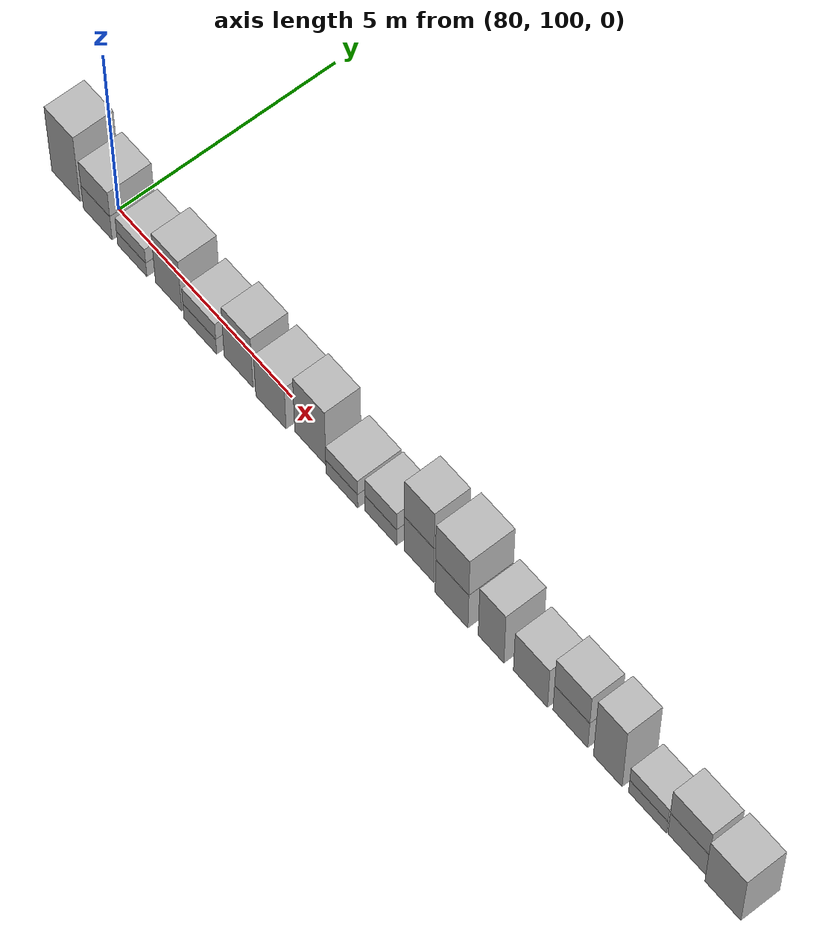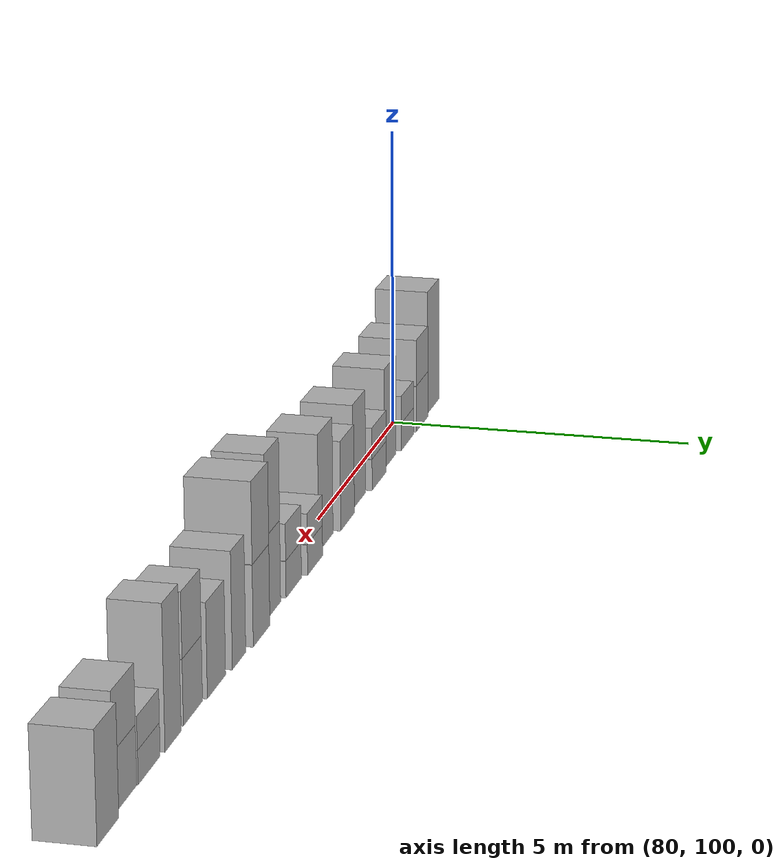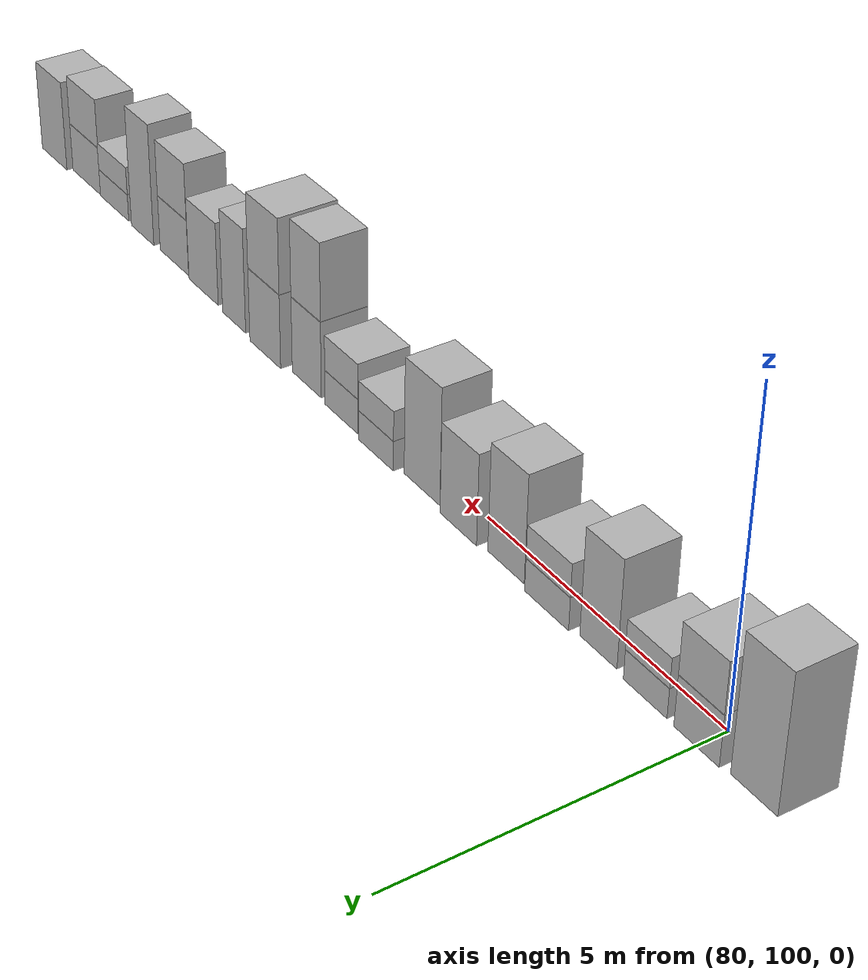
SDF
<sdf version="1.5">
 <world name="default">
  <model name="ground_plane">
   <static>true</static>
   <link name="link">
    <collision name="collision">
     <geometry><plane><normal>0 0 1</normal><size>250 250</size></plane></geometry>
     <surface><friction><ode><mu>1</mu><mu2>1</mu2></ode></friction></surface>
    </collision>
    <visual name="grass">
     <cast_shadows>false</cast_shadows>
     <geometry><mesh><uri>file://grass_plane/meshes/grass_plane.dae</uri></mesh></geometry>
    </visual>
   </link>
  </model>
  <model name="Cardboard_box_179">
   <link name="link_0">
    <pose>79 100 0 0 0 0</pose>
    <inertial>
     <mass>1</mass>
     <inertia>
      <ixx>0.166667</ixx>
      <ixy>0</ixy>
      <ixz>0</ixz>
      <iyy>0.166667</iyy>
      <iyz>0</iyz>
      <izz>0.166667</izz>
     </inertia>
    </inertial>
    <collision name="collision">
     <geometry>
      <mesh>
       <uri>model://Cardboard_box/meshes/cardboard_box.dae</uri>
       <scale>2.122306021 2.26505654423 5.37925650093</scale>
      </mesh>
     </geometry>
    </collision>
    <visual name="visual">
     <geometry>
      <mesh>
       <uri>model://Cardboard_box/meshes/cardboard_box.dae</uri>
       <scale>2.122306021 2.26505654423 5.37925650093</scale>
      </mesh>
     </geometry>
    </visual>
   </link>
   <static>1</static>
  </model>
  <model name="Cardboard_box_180">
   <link name="link_0">
    <pose>80 100 0 0 0 0</pose>
    <inertial>
     <mass>1</mass>
     <inertia>
      <ixx>0.166667</ixx>
      <ixy>0</ixy>
      <ixz>0</ixz>
      <iyy>0.166667</iyy>
      <iyz>0</iyz>
      <izz>0.166667</izz>
     </inertia>
    </inertial>
    <collision name="collision">
     <geometry>
      <mesh>
       <uri>model://Cardboard_box/meshes/cardboard_box.dae</uri>
       <scale>2.13948751265 2.47710750509 1.99974900965</scale>
      </mesh>
     </geometry>
    </collision>
    <visual name="visual">
     <geometry>
      <mesh>
       <uri>model://Cardboard_box/meshes/cardboard_box.dae</uri>
       <scale>2.13948751265 2.47710750509 1.99974900965</scale>
      </mesh>
     </geometry>
    </visual>
   </link>
   <static>1</static>
  </model>
  <model name="Cardboard_box_top_180">
   <link name="link_0">
    <pose>80 100 0.799899603859 0 0 0</pose>
    <inertial>
     <mass>1</mass>
     <inertia>
      <ixx>0.166667</ixx>
      <ixy>0</ixy>
      <ixz>0</ixz>
      <iyy>0.166667</iyy>
      <iyz>0</iyz>
      <izz>0.166667</izz>
     </inertia>
    </inertial>
    <collision name="collision">
     <geometry>
      <mesh>
       <uri>model://Cardboard_box/meshes/cardboard_box.dae</uri>
       <scale>2.13948751265 2.47710750509 1.99974900965</scale>
      </mesh>
     </geometry>
    </collision>
    <visual name="visual">
     <geometry>
      <mesh>
       <uri>model://Cardboard_box/meshes/cardboard_box.dae</uri>
       <scale>2.13948751265 2.47710750509 1.99974900965</scale>
      </mesh>
     </geometry>
    </visual>
   </link>
   <static>1</static>
  </model>
  <model name="Cardboard_box_181">
   <link name="link_0">
    <pose>81 100 0 0 0 0</pose>
    <inertial>
     <mass>1</mass>
     <inertia>
      <ixx>0.166667</ixx>
      <ixy>0</ixy>
      <ixz>0</ixz>
      <iyy>0.166667</iyy>
      <iyz>0</iyz>
      <izz>0.166667</izz>
     </inertia>
    </inertial>
    <collision name="collision">
     <geometry>
      <mesh>
       <uri>model://Cardboard_box/meshes/cardboard_box.dae</uri>
       <scale>2.15741598389 2.40993669173 1.17210435555</scale>
      </mesh>
     </geometry>
    </collision>
    <visual name="visual">
     <geometry>
      <mesh>
       <uri>model://Cardboard_box/meshes/cardboard_box.dae</uri>
       <scale>2.15741598389 2.40993669173 1.17210435555</scale>
      </mesh>
     </geometry>
    </visual>
   </link>
   <static>1</static>
  </model>
  <model name="Cardboard_box_top_181">
   <link name="link_0">
    <pose>81 100 0.468841742218 0 0 0</pose>
    <inertial>
     <mass>1</mass>
     <inertia>
      <ixx>0.166667</ixx>
      <ixy>0</ixy>
      <ixz>0</ixz>
      <iyy>0.166667</iyy>
      <iyz>0</iyz>
      <izz>0.166667</izz>
     </inertia>
    </inertial>
    <collision name="collision">
     <geometry>
      <mesh>
       <uri>model://Cardboard_box/meshes/cardboard_box.dae</uri>
       <scale>2.15741598389 2.40993669173 1.17210435555</scale>
      </mesh>
     </geometry>
    </collision>
    <visual name="visual">
     <geometry>
      <mesh>
       <uri>model://Cardboard_box/meshes/cardboard_box.dae</uri>
       <scale>2.15741598389 2.40993669173 1.17210435555</scale>
      </mesh>
     </geometry>
    </visual>
   </link>
   <static>1</static>
  </model>
  <model name="Cardboard_box_182">
   <link name="link_0">
    <pose>82 100 0 0 0 0</pose>
    <inertial>
     <mass>1</mass>
     <inertia>
      <ixx>0.166667</ixx>
      <ixy>0</ixy>
      <ixz>0</ixz>
      <iyy>0.166667</iyy>
      <iyz>0</iyz>
      <izz>0.166667</izz>
     </inertia>
    </inertial>
    <collision name="collision">
     <geometry>
      <mesh>
       <uri>model://Cardboard_box/meshes/cardboard_box.dae</uri>
       <scale>1.92047214817 2.17096909257 4.24003227269</scale>
      </mesh>
     </geometry>
    </collision>
    <visual name="visual">
     <geometry>
      <mesh>
       <uri>model://Cardboard_box/meshes/cardboard_box.dae</uri>
       <scale>1.92047214817 2.17096909257 4.24003227269</scale>
      </mesh>
     </geometry>
    </visual>
   </link>
   <static>1</static>
  </model>
  <model name="Cardboard_box_183">
   <link name="link_0">
    <pose>83 100 0 0 0 0</pose>
    <inertial>
     <mass>1</mass>
     <inertia>
      <ixx>0.166667</ixx>
      <ixy>0</ixy>
      <ixz>0</ixz>
      <iyy>0.166667</iyy>
      <iyz>0</iyz>
      <izz>0.166667</izz>
     </inertia>
    </inertial>
    <collision name="collision">
     <geometry>
      <mesh>
       <uri>model://Cardboard_box/meshes/cardboard_box.dae</uri>
       <scale>2.3789508709 2.49527070488 1.31243319637</scale>
      </mesh>
     </geometry>
    </collision>
    <visual name="visual">
     <geometry>
      <mesh>
       <uri>model://Cardboard_box/meshes/cardboard_box.dae</uri>
       <scale>2.3789508709 2.49527070488 1.31243319637</scale>
      </mesh>
     </geometry>
    </visual>
   </link>
   <static>1</static>
  </model>
  <model name="Cardboard_box_top_183">
   <link name="link_0">
    <pose>83 100 0.524973278549 0 0 0</pose>
    <inertial>
     <mass>1</mass>
     <inertia>
      <ixx>0.166667</ixx>
      <ixy>0</ixy>
      <ixz>0</ixz>
      <iyy>0.166667</iyy>
      <iyz>0</iyz>
      <izz>0.166667</izz>
     </inertia>
    </inertial>
    <collision name="collision">
     <geometry>
      <mesh>
       <uri>model://Cardboard_box/meshes/cardboard_box.dae</uri>
       <scale>2.3789508709 2.49527070488 1.31243319637</scale>
      </mesh>
     </geometry>
    </collision>
    <visual name="visual">
     <geometry>
      <mesh>
       <uri>model://Cardboard_box/meshes/cardboard_box.dae</uri>
       <scale>2.3789508709 2.49527070488 1.31243319637</scale>
      </mesh>
     </geometry>
    </visual>
   </link>
   <static>1</static>
  </model>
  <model name="Cardboard_box_184">
   <link name="link_0">
    <pose>84 100 0 0 0 0</pose>
    <inertial>
     <mass>1</mass>
     <inertia>
      <ixx>0.166667</ixx>
      <ixy>0</ixy>
      <ixz>0</ixz>
      <iyy>0.166667</iyy>
      <iyz>0</iyz>
      <izz>0.166667</izz>
     </inertia>
    </inertial>
    <collision name="collision">
     <geometry>
      <mesh>
       <uri>model://Cardboard_box/meshes/cardboard_box.dae</uri>
       <scale>2.0613268723 2.10571959502 4.31785598906</scale>
      </mesh>
     </geometry>
    </collision>
    <visual name="visual">
     <geometry>
      <mesh>
       <uri>model://Cardboard_box/meshes/cardboard_box.dae</uri>
       <scale>2.0613268723 2.10571959502 4.31785598906</scale>
      </mesh>
     </geometry>
    </visual>
   </link>
   <static>1</static>
  </model>
  <model name="Cardboard_box_185">
   <link name="link_0">
    <pose>85 100 0 0 0 0</pose>
    <inertial>
     <mass>1</mass>
     <inertia>
      <ixx>0.166667</ixx>
      <ixy>0</ixy>
      <ixz>0</ixz>
      <iyy>0.166667</iyy>
      <iyz>0</iyz>
      <izz>0.166667</izz>
     </inertia>
    </inertial>
    <collision name="collision">
     <geometry>
      <mesh>
       <uri>model://Cardboard_box/meshes/cardboard_box.dae</uri>
       <scale>2.15543850499 2.43160649641 3.66866801806</scale>
      </mesh>
     </geometry>
    </collision>
    <visual name="visual">
     <geometry>
      <mesh>
       <uri>model://Cardboard_box/meshes/cardboard_box.dae</uri>
       <scale>2.15543850499 2.43160649641 3.66866801806</scale>
      </mesh>
     </geometry>
    </visual>
   </link>
   <static>1</static>
  </model>
  <model name="Cardboard_box_186">
   <link name="link_0">
    <pose>86 100 0 0 0 0</pose>
    <inertial>
     <mass>1</mass>
     <inertia>
      <ixx>0.166667</ixx>
      <ixy>0</ixy>
      <ixz>0</ixz>
      <iyy>0.166667</iyy>
      <iyz>0</iyz>
      <izz>0.166667</izz>
     </inertia>
    </inertial>
    <collision name="collision">
     <geometry>
      <mesh>
       <uri>model://Cardboard_box/meshes/cardboard_box.dae</uri>
       <scale>2.19474587979 1.99302947957 4.74889730759</scale>
      </mesh>
     </geometry>
    </collision>
    <visual name="visual">
     <geometry>
      <mesh>
       <uri>model://Cardboard_box/meshes/cardboard_box.dae</uri>
       <scale>2.19474587979 1.99302947957 4.74889730759</scale>
      </mesh>
     </geometry>
    </visual>
   </link>
   <static>1</static>
  </model>
  <model name="Cardboard_box_187">
   <link name="link_0">
    <pose>87 100 0 0 0 0</pose>
    <inertial>
     <mass>1</mass>
     <inertia>
      <ixx>0.166667</ixx>
      <ixy>0</ixy>
      <ixz>0</ixz>
      <iyy>0.166667</iyy>
      <iyz>0</iyz>
      <izz>0.166667</izz>
     </inertia>
    </inertial>
    <collision name="collision">
     <geometry>
      <mesh>
       <uri>model://Cardboard_box/meshes/cardboard_box.dae</uri>
       <scale>2.22340834325 2.47675398053 1.22494720834</scale>
      </mesh>
     </geometry>
    </collision>
    <visual name="visual">
     <geometry>
      <mesh>
       <uri>model://Cardboard_box/meshes/cardboard_box.dae</uri>
       <scale>2.22340834325 2.47675398053 1.22494720834</scale>
      </mesh>
     </geometry>
    </visual>
   </link>
   <static>1</static>
  </model>
  <model name="Cardboard_box_top_187">
   <link name="link_0">
    <pose>87 100 0.489978883335 0 0 0</pose>
    <inertial>
     <mass>1</mass>
     <inertia>
      <ixx>0.166667</ixx>
      <ixy>0</ixy>
      <ixz>0</ixz>
      <iyy>0.166667</iyy>
      <iyz>0</iyz>
      <izz>0.166667</izz>
     </inertia>
    </inertial>
    <collision name="collision">
     <geometry>
      <mesh>
       <uri>model://Cardboard_box/meshes/cardboard_box.dae</uri>
       <scale>2.22340834325 2.47675398053 1.22494720834</scale>
      </mesh>
     </geometry>
    </collision>
    <visual name="visual">
     <geometry>
      <mesh>
       <uri>model://Cardboard_box/meshes/cardboard_box.dae</uri>
       <scale>2.22340834325 2.47675398053 1.22494720834</scale>
      </mesh>
     </geometry>
    </visual>
   </link>
   <static>1</static>
  </model>
  <model name="Cardboard_box_188">
   <link name="link_0">
    <pose>88 100 0 0 0 0</pose>
    <inertial>
     <mass>1</mass>
     <inertia>
      <ixx>0.166667</ixx>
      <ixy>0</ixy>
      <ixz>0</ixz>
      <iyy>0.166667</iyy>
      <iyz>0</iyz>
      <izz>0.166667</izz>
     </inertia>
    </inertial>
    <collision name="collision">
     <geometry>
      <mesh>
       <uri>model://Cardboard_box/meshes/cardboard_box.dae</uri>
       <scale>2.19333294126 2.15988090615 1.45007693015</scale>
      </mesh>
     </geometry>
    </collision>
    <visual name="visual">
     <geometry>
      <mesh>
       <uri>model://Cardboard_box/meshes/cardboard_box.dae</uri>
       <scale>2.19333294126 2.15988090615 1.45007693015</scale>
      </mesh>
     </geometry>
    </visual>
   </link>
   <static>1</static>
  </model>
  <model name="Cardboard_box_top_188">
   <link name="link_0">
    <pose>88 100 0.58003077206 0 0 0</pose>
    <inertial>
     <mass>1</mass>
     <inertia>
      <ixx>0.166667</ixx>
      <ixy>0</ixy>
      <ixz>0</ixz>
      <iyy>0.166667</iyy>
      <iyz>0</iyz>
      <izz>0.166667</izz>
     </inertia>
    </inertial>
    <collision name="collision">
     <geometry>
      <mesh>
       <uri>model://Cardboard_box/meshes/cardboard_box.dae</uri>
       <scale>2.19333294126 2.15988090615 1.45007693015</scale>
      </mesh>
     </geometry>
    </collision>
    <visual name="visual">
     <geometry>
      <mesh>
       <uri>model://Cardboard_box/meshes/cardboard_box.dae</uri>
       <scale>2.19333294126 2.15988090615 1.45007693015</scale>
      </mesh>
     </geometry>
    </visual>
   </link>
   <static>1</static>
  </model>
  <model name="Cardboard_box_189">
   <link name="link_0">
    <pose>89 100 0 0 0 0</pose>
    <inertial>
     <mass>1</mass>
     <inertia>
      <ixx>0.166667</ixx>
      <ixy>0</ixy>
      <ixz>0</ixz>
      <iyy>0.166667</iyy>
      <iyz>0</iyz>
      <izz>0.166667</izz>
     </inertia>
    </inertial>
    <collision name="collision">
     <geometry>
      <mesh>
       <uri>model://Cardboard_box/meshes/cardboard_box.dae</uri>
       <scale>2.01243470722 1.96870483521 3.18833075897</scale>
      </mesh>
     </geometry>
    </collision>
    <visual name="visual">
     <geometry>
      <mesh>
       <uri>model://Cardboard_box/meshes/cardboard_box.dae</uri>
       <scale>2.01243470722 1.96870483521 3.18833075897</scale>
      </mesh>
     </geometry>
    </visual>
   </link>
   <static>1</static>
  </model>
  <model name="Cardboard_box_top_189">
   <link name="link_0">
    <pose>89 100 1.27533230359 0 0 0</pose>
    <inertial>
     <mass>1</mass>
     <inertia>
      <ixx>0.166667</ixx>
      <ixy>0</ixy>
      <ixz>0</ixz>
      <iyy>0.166667</iyy>
      <iyz>0</iyz>
      <izz>0.166667</izz>
     </inertia>
    </inertial>
    <collision name="collision">
     <geometry>
      <mesh>
       <uri>model://Cardboard_box/meshes/cardboard_box.dae</uri>
       <scale>2.01243470722 1.96870483521 3.18833075897</scale>
      </mesh>
     </geometry>
    </collision>
    <visual name="visual">
     <geometry>
      <mesh>
       <uri>model://Cardboard_box/meshes/cardboard_box.dae</uri>
       <scale>2.01243470722 1.96870483521 3.18833075897</scale>
      </mesh>
     </geometry>
    </visual>
   </link>
   <static>1</static>
  </model>
  <model name="Cardboard_box_190">
   <link name="link_0">
    <pose>90 100 0 0 0 0</pose>
    <inertial>
     <mass>1</mass>
     <inertia>
      <ixx>0.166667</ixx>
      <ixy>0</ixy>
      <ixz>0</ixz>
      <iyy>0.166667</iyy>
      <iyz>0</iyz>
      <izz>0.166667</izz>
     </inertia>
    </inertial>
    <collision name="collision">
     <geometry>
      <mesh>
       <uri>model://Cardboard_box/meshes/cardboard_box.dae</uri>
       <scale>2.22950049554 2.47895454864 3.12920038767</scale>
      </mesh>
     </geometry>
    </collision>
    <visual name="visual">
     <geometry>
      <mesh>
       <uri>model://Cardboard_box/meshes/cardboard_box.dae</uri>
       <scale>2.22950049554 2.47895454864 3.12920038767</scale>
      </mesh>
     </geometry>
    </visual>
   </link>
   <static>1</static>
  </model>
  <model name="Cardboard_box_top_190">
   <link name="link_0">
    <pose>90 100 1.25168015507 0 0 0</pose>
    <inertial>
     <mass>1</mass>
     <inertia>
      <ixx>0.166667</ixx>
      <ixy>0</ixy>
      <ixz>0</ixz>
      <iyy>0.166667</iyy>
      <iyz>0</iyz>
      <izz>0.166667</izz>
     </inertia>
    </inertial>
    <collision name="collision">
     <geometry>
      <mesh>
       <uri>model://Cardboard_box/meshes/cardboard_box.dae</uri>
       <scale>2.22950049554 2.47895454864 3.12920038767</scale>
      </mesh>
     </geometry>
    </collision>
    <visual name="visual">
     <geometry>
      <mesh>
       <uri>model://Cardboard_box/meshes/cardboard_box.dae</uri>
       <scale>2.22950049554 2.47895454864 3.12920038767</scale>
      </mesh>
     </geometry>
    </visual>
   </link>
   <static>1</static>
  </model>
  <model name="Cardboard_box_191">
   <link name="link_0">
    <pose>91 100 0 0 0 0</pose>
    <inertial>
     <mass>1</mass>
     <inertia>
      <ixx>0.166667</ixx>
      <ixy>0</ixy>
      <ixz>0</ixz>
      <iyy>0.166667</iyy>
      <iyz>0</iyz>
      <izz>0.166667</izz>
     </inertia>
    </inertial>
    <collision name="collision">
     <geometry>
      <mesh>
       <uri>model://Cardboard_box/meshes/cardboard_box.dae</uri>
       <scale>1.7302065236 2.22278371652 4.4590986287</scale>
      </mesh>
     </geometry>
    </collision>
    <visual name="visual">
     <geometry>
      <mesh>
       <uri>model://Cardboard_box/meshes/cardboard_box.dae</uri>
       <scale>1.7302065236 2.22278371652 4.4590986287</scale>
      </mesh>
     </geometry>
    </visual>
   </link>
   <static>1</static>
  </model>
  <model name="Cardboard_box_192">
   <link name="link_0">
    <pose>92 100 0 0 0 0</pose>
    <inertial>
     <mass>1</mass>
     <inertia>
      <ixx>0.166667</ixx>
      <ixy>0</ixy>
      <ixz>0</ixz>
      <iyy>0.166667</iyy>
      <iyz>0</iyz>
      <izz>0.166667</izz>
     </inertia>
    </inertial>
    <collision name="collision">
     <geometry>
      <mesh>
       <uri>model://Cardboard_box/meshes/cardboard_box.dae</uri>
       <scale>2.27268117268 2.0232318568 3.56575448518</scale>
      </mesh>
     </geometry>
    </collision>
    <visual name="visual">
     <geometry>
      <mesh>
       <uri>model://Cardboard_box/meshes/cardboard_box.dae</uri>
       <scale>2.27268117268 2.0232318568 3.56575448518</scale>
      </mesh>
     </geometry>
    </visual>
   </link>
   <static>1</static>
  </model>
  <model name="Cardboard_box_193">
   <link name="link_0">
    <pose>93 100 0 0 0 0</pose>
    <inertial>
     <mass>1</mass>
     <inertia>
      <ixx>0.166667</ixx>
      <ixy>0</ixy>
      <ixz>0</ixz>
      <iyy>0.166667</iyy>
      <iyz>0</iyz>
      <izz>0.166667</izz>
     </inertia>
    </inertial>
    <collision name="collision">
     <geometry>
      <mesh>
       <uri>model://Cardboard_box/meshes/cardboard_box.dae</uri>
       <scale>2.2989456872 1.80769841591 2.42991941601</scale>
      </mesh>
     </geometry>
    </collision>
    <visual name="visual">
     <geometry>
      <mesh>
       <uri>model://Cardboard_box/meshes/cardboard_box.dae</uri>
       <scale>2.2989456872 1.80769841591 2.42991941601</scale>
      </mesh>
     </geometry>
    </visual>
   </link>
   <static>1</static>
  </model>
  <model name="Cardboard_box_top_193">
   <link name="link_0">
    <pose>93 100 0.971967766405 0 0 0</pose>
    <inertial>
     <mass>1</mass>
     <inertia>
      <ixx>0.166667</ixx>
      <ixy>0</ixy>
      <ixz>0</ixz>
      <iyy>0.166667</iyy>
      <iyz>0</iyz>
      <izz>0.166667</izz>
     </inertia>
    </inertial>
    <collision name="collision">
     <geometry>
      <mesh>
       <uri>model://Cardboard_box/meshes/cardboard_box.dae</uri>
       <scale>2.2989456872 1.80769841591 2.42991941601</scale>
      </mesh>
     </geometry>
    </collision>
    <visual name="visual">
     <geometry>
      <mesh>
       <uri>model://Cardboard_box/meshes/cardboard_box.dae</uri>
       <scale>2.2989456872 1.80769841591 2.42991941601</scale>
      </mesh>
     </geometry>
    </visual>
   </link>
   <static>1</static>
  </model>
  <model name="Cardboard_box_194">
   <link name="link_0">
    <pose>94 100 0 0 0 0</pose>
    <inertial>
     <mass>1</mass>
     <inertia>
      <ixx>0.166667</ixx>
      <ixy>0</ixy>
      <ixz>0</ixz>
      <iyy>0.166667</iyy>
      <iyz>0</iyz>
      <izz>0.166667</izz>
     </inertia>
    </inertial>
    <collision name="collision">
     <geometry>
      <mesh>
       <uri>model://Cardboard_box/meshes/cardboard_box.dae</uri>
       <scale>1.87580792449 1.91036093158 5.33084869958</scale>
      </mesh>
     </geometry>
    </collision>
    <visual name="visual">
     <geometry>
      <mesh>
       <uri>model://Cardboard_box/meshes/cardboard_box.dae</uri>
       <scale>1.87580792449 1.91036093158 5.33084869958</scale>
      </mesh>
     </geometry>
    </visual>
   </link>
   <static>1</static>
  </model>
  <model name="Cardboard_box_195">
   <link name="link_0">
    <pose>95 100 0 0 0 0</pose>
    <inertial>
     <mass>1</mass>
     <inertia>
      <ixx>0.166667</ixx>
      <ixy>0</ixy>
      <ixz>0</ixz>
      <iyy>0.166667</iyy>
      <iyz>0</iyz>
      <izz>0.166667</izz>
     </inertia>
    </inertial>
    <collision name="collision">
     <geometry>
      <mesh>
       <uri>model://Cardboard_box/meshes/cardboard_box.dae</uri>
       <scale>2.45756136286 1.79018519941 1.20692525447</scale>
      </mesh>
     </geometry>
    </collision>
    <visual name="visual">
     <geometry>
      <mesh>
       <uri>model://Cardboard_box/meshes/cardboard_box.dae</uri>
       <scale>2.45756136286 1.79018519941 1.20692525447</scale>
      </mesh>
     </geometry>
    </visual>
   </link>
   <static>1</static>
  </model>
  <model name="Cardboard_box_top_195">
   <link name="link_0">
    <pose>95 100 0.48277010179 0 0 0</pose>
    <inertial>
     <mass>1</mass>
     <inertia>
      <ixx>0.166667</ixx>
      <ixy>0</ixy>
      <ixz>0</ixz>
      <iyy>0.166667</iyy>
      <iyz>0</iyz>
      <izz>0.166667</izz>
     </inertia>
    </inertial>
    <collision name="collision">
     <geometry>
      <mesh>
       <uri>model://Cardboard_box/meshes/cardboard_box.dae</uri>
       <scale>2.45756136286 1.79018519941 1.20692525447</scale>
      </mesh>
     </geometry>
    </collision>
    <visual name="visual">
     <geometry>
      <mesh>
       <uri>model://Cardboard_box/meshes/cardboard_box.dae</uri>
       <scale>2.45756136286 1.79018519941 1.20692525447</scale>
      </mesh>
     </geometry>
    </visual>
   </link>
   <static>1</static>
  </model>
  <model name="Cardboard_box_196">
   <link name="link_0">
    <pose>96 100 0 0 0 0</pose>
    <inertial>
     <mass>1</mass>
     <inertia>
      <ixx>0.166667</ixx>
      <ixy>0</ixy>
      <ixz>0</ixz>
      <iyy>0.166667</iyy>
      <iyz>0</iyz>
      <izz>0.166667</izz>
     </inertia>
    </inertial>
    <collision name="collision">
     <geometry>
      <mesh>
       <uri>model://Cardboard_box/meshes/cardboard_box.dae</uri>
       <scale>2.4993552616 1.72058983402 2.14754347963</scale>
      </mesh>
     </geometry>
    </collision>
    <visual name="visual">
     <geometry>
      <mesh>
       <uri>model://Cardboard_box/meshes/cardboard_box.dae</uri>
       <scale>2.4993552616 1.72058983402 2.14754347963</scale>
      </mesh>
     </geometry>
    </visual>
   </link>
   <static>1</static>
  </model>
  <model name="Cardboard_box_top_196">
   <link name="link_0">
    <pose>96 100 0.859017391851 0 0 0</pose>
    <inertial>
     <mass>1</mass>
     <inertia>
      <ixx>0.166667</ixx>
      <ixy>0</ixy>
      <ixz>0</ixz>
      <iyy>0.166667</iyy>
      <iyz>0</iyz>
      <izz>0.166667</izz>
     </inertia>
    </inertial>
    <collision name="collision">
     <geometry>
      <mesh>
       <uri>model://Cardboard_box/meshes/cardboard_box.dae</uri>
       <scale>2.4993552616 1.72058983402 2.14754347963</scale>
      </mesh>
     </geometry>
    </collision>
    <visual name="visual">
     <geometry>
      <mesh>
       <uri>model://Cardboard_box/meshes/cardboard_box.dae</uri>
       <scale>2.4993552616 1.72058983402 2.14754347963</scale>
      </mesh>
     </geometry>
    </visual>
   </link>
   <static>1</static>
  </model>
  <model name="Cardboard_box_197">
   <link name="link_0">
    <pose>97 100 0 0 0 0</pose>
    <inertial>
     <mass>1</mass>
     <inertia>
      <ixx>0.166667</ixx>
      <ixy>0</ixy>
      <ixz>0</ixz>
      <iyy>0.166667</iyy>
      <iyz>0</iyz>
      <izz>0.166667</izz>
     </inertia>
    </inertial>
    <collision name="collision">
     <geometry>
      <mesh>
       <uri>model://Cardboard_box/meshes/cardboard_box.dae</uri>
       <scale>2.28743080212 2.15670791848 4.00187235179</scale>
      </mesh>
     </geometry>
    </collision>
    <visual name="visual">
     <geometry>
      <mesh>
       <uri>model://Cardboard_box/meshes/cardboard_box.dae</uri>
       <scale>2.28743080212 2.15670791848 4.00187235179</scale>
      </mesh>
     </geometry>
    </visual>
   </link>
   <static>1</static>
  </model>
 </world>
</sdf>
